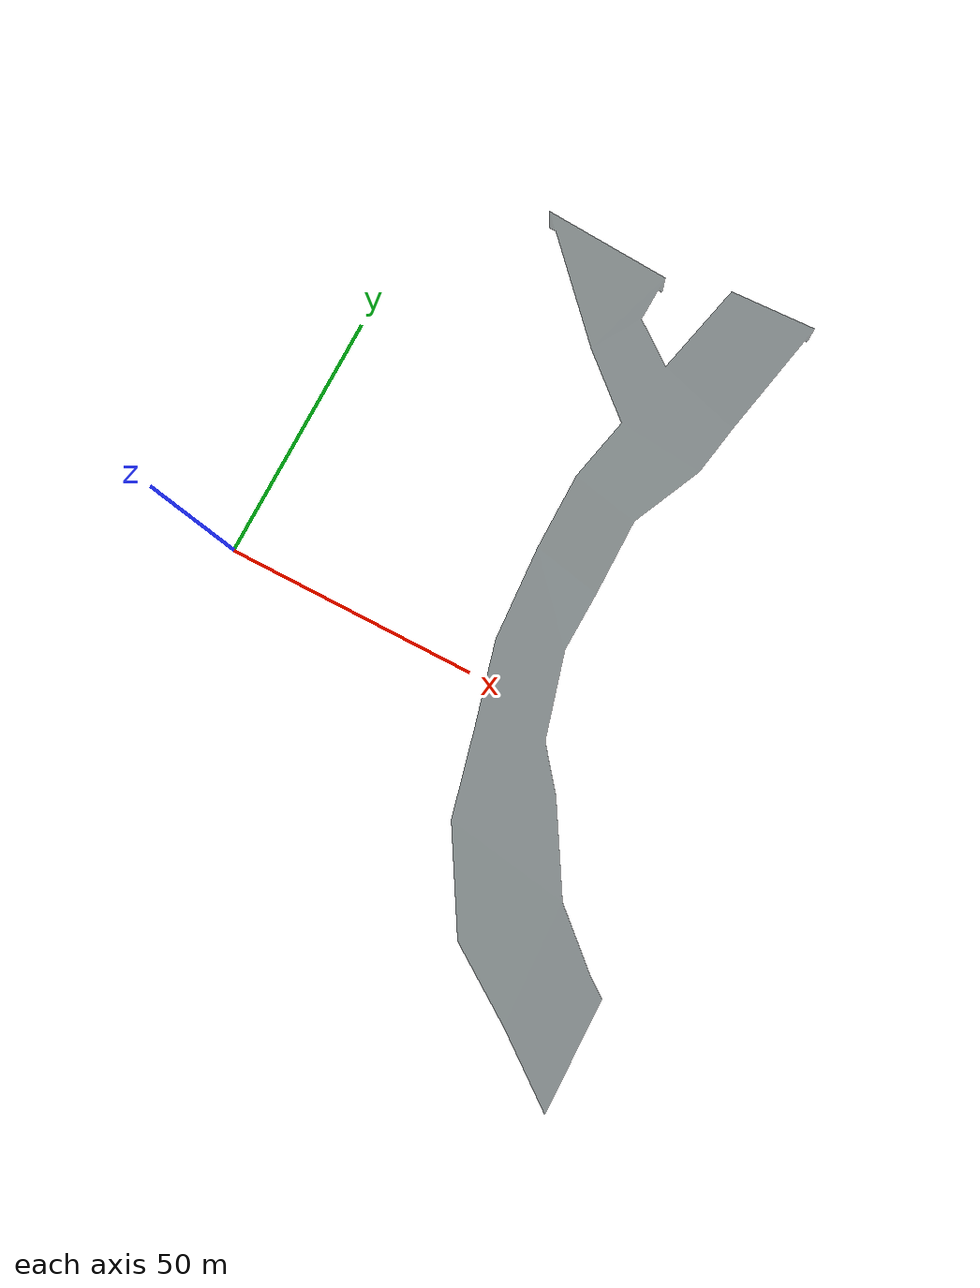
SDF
<?xml version="1.0" ?>
<sdf version="1.4">
  <model name="river">
    <static>true</static>

    <link name="river">
      <collision name="collision">
	<geometry>
            <mesh>
	      <uri>model://galtelli_small_river/galtelli_small_river.dae</uri>
	    </mesh>
          </geometry>
      </collision>
      <visual name="visual">
        <cast_shadows>false</cast_shadows>
         <transparency>0.5</transparency>

	<geometry>
            <mesh>
	      <uri>model://galtelli_small_river/galtelli_small_river.dae</uri>
	    </mesh>
          </geometry>
        <material>
          <script>
            <uri>file://materials/scripts/iai-rescue-galtelli.material</uri>
	     <name>IAI/River</name>
          </script>
        </material>
      </visual>
    </link>

  </model>
</sdf>
